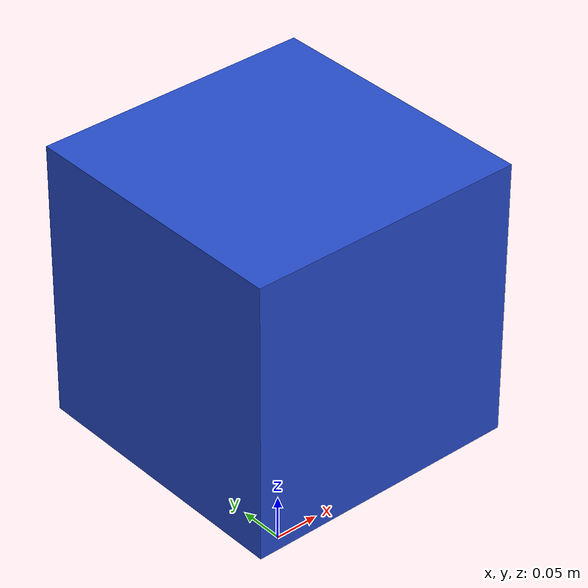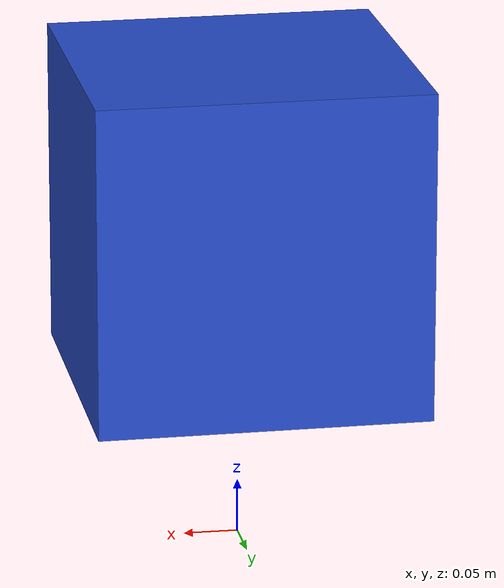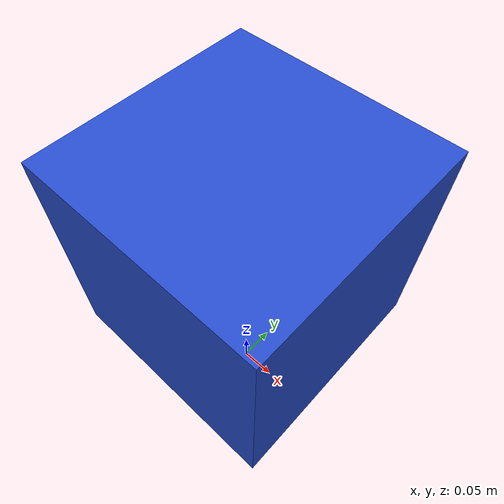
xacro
<?xml version="1.0"?>
<robot xmlns:xacro="http://www.ros.org/wiki/xacro">

    <xacro:property name="base_length" value="0.3" />
    <xacro:property name="base_width" value="0.3" />
    <xacro:property name="base_height" value="0.3" />

    <link name="world"></link>

    <link name="box_link">
        <visual>
            <geometry>
                <box size="${base_length} ${base_width} ${base_height}" />
            </geometry>
            <origin xyz="0 0 ${base_height / 2.0}" rpy="0 0 0" />
            <material name="blue" />
        </visual>
        <collision>
            <geometry>
                <box size="${base_length} ${base_width} ${base_height}" />
            </geometry>
            <origin xyz="0 0 ${base_height / 2.0}" rpy="0 0 0" />
        </collision>
        <xacro:box_inertia m="0.1" l="${base_length}" w="${base_width}" h="${base_height}"
                           xyz="0 0 ${base_height / 2.0}" rpy="0 0 0" />
    </link>

    <joint name="world_box_joint" type="planar">
        <parent link="world" />
        <child link="box_link" />
        <origin xyz="0 0 ${base_height / 2.0}" rpy="0 0 0" />
        <axis xyz="0 0 1" />
    </joint>

</robot>
